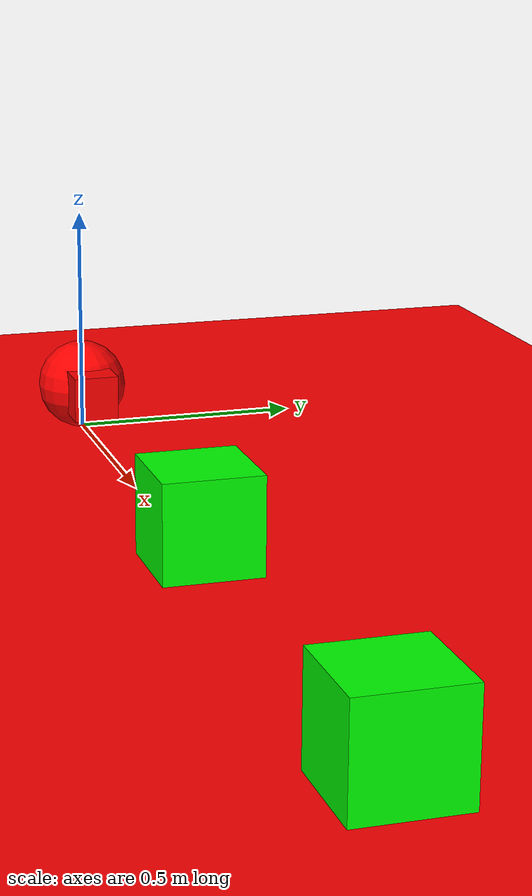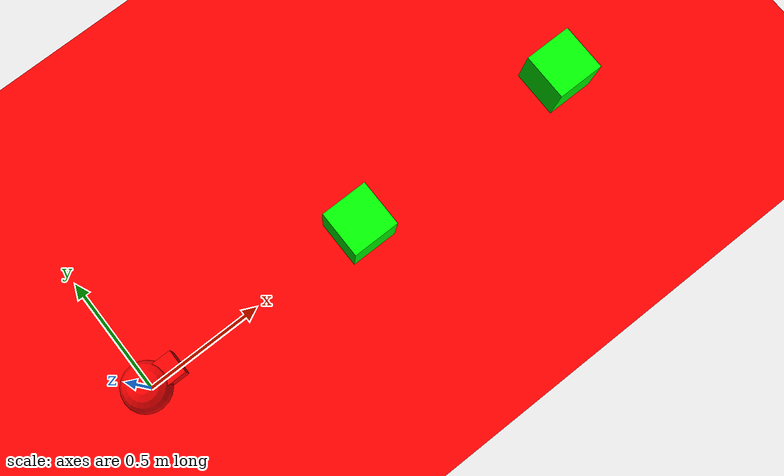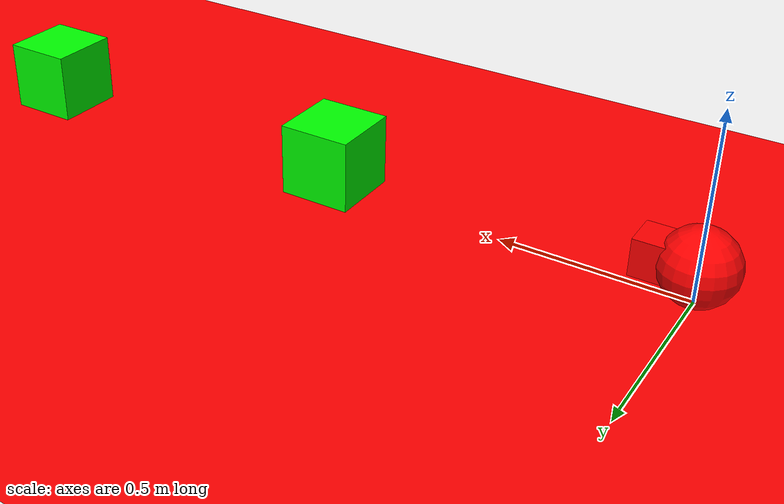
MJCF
<mujoco>
    <size njmax="3000" nconmax="1000"/>
    <option timestep="0.002"/>
    <default>
        <geom condim="6" density="1" rgba="1 0 0 1"/>
        <joint damping=".001"/>
        <motor ctrlrange="-1 1" ctrllimited="true" forcerange="-.05 .05" forcelimited="true"/>
        <velocity ctrlrange="-1 1" ctrllimited="true" forcerange="-.05 .05" forcelimited="true"/>
        <site size="0.032" type="sphere"/>
    </default>
    <worldbody>
        <light name="top" pos="0 0 1"/>
        <light name="side" pos="0 0 0"/>
        <geom name="floor" size="5 5 0.1" type="plane" condim="6"/>
        <body name="robot" pos="0 0 .1">
            <camera name="vision" pos="0 0 .15" xyaxes="0 -1 0 .4 0 1" fovy="90"/>
            <joint type="slide" axis="1 0 0" name="x" damping="0.01"/>
            <joint type="slide" axis="0 1 0" name="y" damping="0.01"/>
            <joint type="hinge" axis="0 0 1" name="z" damping="0.005"/>
            <geom name="robot_geom" type="sphere" size=".1" friction="1 0.01 0.01"/>
            <geom name="pointarrow" pos="0.1 0 0" size="0.05 0.05 0.05" type="box"/>
            <site name="robot" rgba="1 0 0 .1"/>
        </body>
        <!-- Add objects in front of the robot -->
        <body name="object0" pos="1 0 0.1">
            <geom name="object0_geom" type="box" size="0.1 0.1 0.1" rgba="0 1 0 1"/>
        </body>
        <body name="object1" pos="2 0 0.1">
            <geom name="object1_geom" type="box" size="0.1 0.1 0.1" rgba="0 1 0 1"/>
        </body>
        <!-- Add more objects as needed -->
    </worldbody>
    <!-- Rest of your XML file remains the same -->

        <!-- Add this actuator section -->
    <actuator>
        <motor joint="x" ctrlrange="-1 1" ctrllimited="true"/>
        <motor joint="y" ctrlrange="-1 1" ctrllimited="true"/>
        <motor joint="z" ctrlrange="-1 1" ctrllimited="true"/>
    </actuator>

</mujoco>
